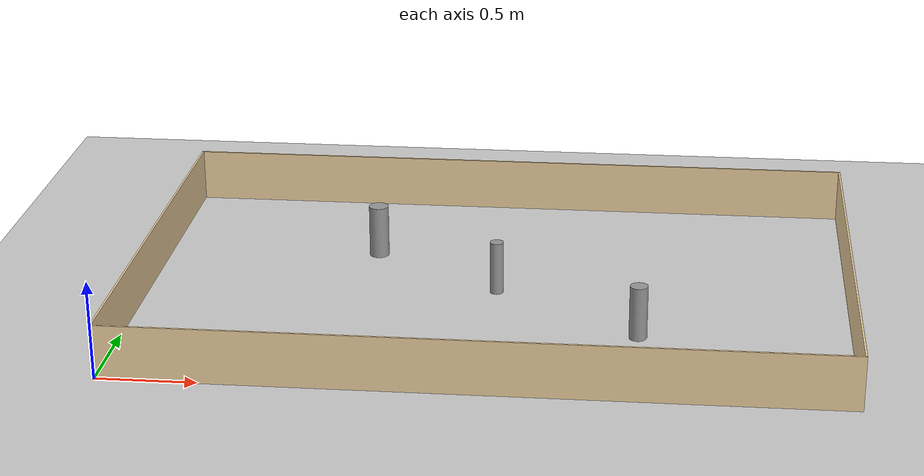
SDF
<?xml version="1.0" ?>
<sdf version="1.4">
  <world name="default">
    <scene>
      <ambient>0.5 0.5 0.5 1.0</ambient>
      <shadows>0</shadows>
    </scene>
    <include>
      <uri>model://ground_plane</uri>
    </include>
    <include>
      <uri>model://sun</uri>
    </include>

    <model name='unit_cylinder1_1'>
      <link name='link'>
        <pose frame=''>1.81 1.21 0.14 0 -0 0</pose>
        <inertial>
          <mass>1</mass>
          <inertia>
            <ixx>0.145833</ixx>
            <ixy>0</ixy>
            <ixz>0</ixz>
            <iyy>0.145833</iyy>
            <iyz>0</iyz>
            <izz>0.125</izz>
          </inertia>
          <pose frame=''>0 0 0 0 -0 0</pose>
        </inertial>
        <self_collide>0</self_collide>
        <kinematic>0</kinematic>
        <gravity>1</gravity>
        <visual name='visual'>
          <geometry>
            <cylinder>
              <radius>0.035</radius>
              <length>0.28</length>
            </cylinder>
          </geometry>
          <material>
            <script>
              <name>Gazebo/Grey</name>
              <uri>file://media/materials/scripts/gazebo.material</uri>
            </script>
            <ambient>0.3 0.3 0.3 1</ambient>
            <diffuse>0.7 0.7 0.7 1</diffuse>
            <specular>0.01 0.01 0.01 1</specular>
            <emissive>0 0 0 1</emissive>
            <shader type='vertex'>
              <normal_map>__default__</normal_map>
            </shader>
          </material>
          <pose frame=''>0 0 0 0 -0 0</pose>
          <transparency>0</transparency>
          <cast_shadows>1</cast_shadows>
        </visual>
        <collision name='collision'>
          <laser_retro>0</laser_retro>
          <max_contacts>10</max_contacts>
          <pose frame=''>0 0 0 0 -0 0</pose>
          <geometry>
            <cylinder>
              <radius>0.035</radius>
              <length>0.28</length>
            </cylinder>
          </geometry>
          <surface>
            <friction>
              <ode>
                <mu>1</mu>
                <mu2>1</mu2>
                <fdir1>0 0 0</fdir1>
                <slip1>0</slip1>
                <slip2>0</slip2>
              </ode>
              <torsional>
                <coefficient>1</coefficient>
                <patch_radius>0</patch_radius>
                <surface_radius>0</surface_radius>
                <use_patch_radius>1</use_patch_radius>
                <ode>
                  <slip>0</slip>
                </ode>
              </torsional>
            </friction>
            <bounce>
              <restitution_coefficient>0</restitution_coefficient>
              <threshold>1e+06</threshold>
            </bounce>
            <contact>
              <collide_without_contact>0</collide_without_contact>
              <collide_without_contact_bitmask>1</collide_without_contact_bitmask>
              <collide_bitmask>1</collide_bitmask>
              <ode>
                <soft_cfm>0</soft_cfm>
                <soft_erp>0.2</soft_erp>
                <kp>1e+13</kp>
                <kd>1</kd>
                <max_vel>0.01</max_vel>
                <min_depth>0</min_depth>
              </ode>
              <bullet>
                <split_impulse>1</split_impulse>
                <split_impulse_penetration_threshold>-0.01</split_impulse_penetration_threshold>
                <soft_cfm>0</soft_cfm>
                <soft_erp>0.2</soft_erp>
                <kp>1e+13</kp>
                <kd>1</kd>
              </bullet>
            </contact>
          </surface>
        </collision>
      </link>
      <static>1</static>
      <allow_auto_disable>1</allow_auto_disable>
      <pose frame=''>0 0 0 0 -0 0</pose>
    </model>

    <model name='unit_cylinder1_2'>
      <link name='link'>
        <pose frame=''>1.13 1.66 0.14 0 -0 0</pose>
        <inertial>
          <mass>1</mass>
          <inertia>
            <ixx>0.145833</ixx>
            <ixy>0</ixy>
            <ixz>0</ixz>
            <iyy>0.145833</iyy>
            <iyz>0</iyz>
            <izz>0.125</izz>
          </inertia>
          <pose frame=''>0 0 0 0 -0 0</pose>
        </inertial>
        <self_collide>0</self_collide>
        <kinematic>0</kinematic>
        <gravity>1</gravity>
        <visual name='visual'>
          <geometry>
            <cylinder>
              <radius>0.052</radius>
              <length>0.28</length>
            </cylinder>
          </geometry>
          <material>
            <script>
              <name>Gazebo/Grey</name>
              <uri>file://media/materials/scripts/gazebo.material</uri>
            </script>
            <ambient>0.3 0.3 0.3 1</ambient>
            <diffuse>0.7 0.7 0.7 1</diffuse>
            <specular>0.01 0.01 0.01 1</specular>
            <emissive>0 0 0 1</emissive>
            <shader type='vertex'>
              <normal_map>__default__</normal_map>
            </shader>
          </material>
          <pose frame=''>0 0 0 0 -0 0</pose>
          <transparency>0</transparency>
          <cast_shadows>1</cast_shadows>
        </visual>
        <collision name='collision'>
          <laser_retro>0</laser_retro>
          <max_contacts>10</max_contacts>
          <pose frame=''>0 0 0 0 -0 0</pose>
          <geometry>
            <cylinder>
              <radius>0.035</radius>
              <length>0.28</length>
            </cylinder>
          </geometry>
          <surface>
            <friction>
              <ode>
                <mu>1</mu>
                <mu2>1</mu2>
                <fdir1>0 0 0</fdir1>
                <slip1>0</slip1>
                <slip2>0</slip2>
              </ode>
              <torsional>
                <coefficient>1</coefficient>
                <patch_radius>0</patch_radius>
                <surface_radius>0</surface_radius>
                <use_patch_radius>1</use_patch_radius>
                <ode>
                  <slip>0</slip>
                </ode>
              </torsional>
            </friction>
            <bounce>
              <restitution_coefficient>0</restitution_coefficient>
              <threshold>1e+06</threshold>
            </bounce>
            <contact>
              <collide_without_contact>0</collide_without_contact>
              <collide_without_contact_bitmask>1</collide_without_contact_bitmask>
              <collide_bitmask>1</collide_bitmask>
              <ode>
                <soft_cfm>0</soft_cfm>
                <soft_erp>0.2</soft_erp>
                <kp>1e+13</kp>
                <kd>1</kd>
                <max_vel>0.01</max_vel>
                <min_depth>0</min_depth>
              </ode>
              <bullet>
                <split_impulse>1</split_impulse>
                <split_impulse_penetration_threshold>-0.01</split_impulse_penetration_threshold>
                <soft_cfm>0</soft_cfm>
                <soft_erp>0.2</soft_erp>
                <kp>1e+13</kp>
                <kd>1</kd>
              </bullet>
            </contact>
          </surface>
        </collision>
      </link>
      <static>1</static>
      <allow_auto_disable>1</allow_auto_disable>
      <pose frame=''>0 0 0 0 -0 0</pose>
    </model>

    <model name='unit_cylinder1_3'>
      <link name='link'>
        <pose frame=''>2.56 0.71 0.14 0 -0 0</pose>
        <inertial>
          <mass>1</mass>
          <inertia>
            <ixx>0.145833</ixx>
            <ixy>0</ixy>
            <ixz>0</ixz>
            <iyy>0.145833</iyy>
            <iyz>0</iyz>
            <izz>0.125</izz>
          </inertia>
          <pose frame=''>0 0 0 0 -0 0</pose>
        </inertial>
        <self_collide>0</self_collide>
        <kinematic>0</kinematic>
        <gravity>1</gravity>
        <visual name='visual'>
          <geometry>
            <cylinder>
              <radius>0.045</radius>
              <length>0.28</length>
            </cylinder>
          </geometry>
          <material>
            <script>
              <name>Gazebo/Grey</name>
              <uri>file://media/materials/scripts/gazebo.material</uri>
            </script>
            <ambient>0.3 0.3 0.3 1</ambient>
            <diffuse>0.7 0.7 0.7 1</diffuse>
            <specular>0.01 0.01 0.01 1</specular>
            <emissive>0 0 0 1</emissive>
            <shader type='vertex'>
              <normal_map>__default__</normal_map>
            </shader>
          </material>
          <pose frame=''>0 0 0 0 -0 0</pose>
          <transparency>0</transparency>
          <cast_shadows>1</cast_shadows>
        </visual>
        <collision name='collision'>
          <laser_retro>0</laser_retro>
          <max_contacts>10</max_contacts>
          <pose frame=''>0 0 0 0 -0 0</pose>
          <geometry>
            <cylinder>
              <radius>0.035</radius>
              <length>0.28</length>
            </cylinder>
          </geometry>
          <surface>
            <friction>
              <ode>
                <mu>1</mu>
                <mu2>1</mu2>
                <fdir1>0 0 0</fdir1>
                <slip1>0</slip1>
                <slip2>0</slip2>
              </ode>
              <torsional>
                <coefficient>1</coefficient>
                <patch_radius>0</patch_radius>
                <surface_radius>0</surface_radius>
                <use_patch_radius>1</use_patch_radius>
                <ode>
                  <slip>0</slip>
                </ode>
              </torsional>
            </friction>
            <bounce>
              <restitution_coefficient>0</restitution_coefficient>
              <threshold>1e+06</threshold>
            </bounce>
            <contact>
              <collide_without_contact>0</collide_without_contact>
              <collide_without_contact_bitmask>1</collide_without_contact_bitmask>
              <collide_bitmask>1</collide_bitmask>
              <ode>
                <soft_cfm>0</soft_cfm>
                <soft_erp>0.2</soft_erp>
                <kp>1e+13</kp>
                <kd>1</kd>
                <max_vel>0.01</max_vel>
                <min_depth>0</min_depth>
              </ode>
              <bullet>
                <split_impulse>1</split_impulse>
                <split_impulse_penetration_threshold>-0.01</split_impulse_penetration_threshold>
                <soft_cfm>0</soft_cfm>
                <soft_erp>0.2</soft_erp>
                <kp>1e+13</kp>
                <kd>1</kd>
              </bullet>
            </contact>
          </surface>
        </collision>
      </link>
      <static>1</static>
      <allow_auto_disable>1</allow_auto_disable>
      <pose frame=''>0 0 0 0 -0 0</pose>
    </model>

    <model name='outer_box'>
    <pose frame=''>1.81 1.21 0 0 -0 0</pose>
    <link name='Wall_0'>
      <collision name='Wall_0_Collision'>
        <geometry>
          <box>
            <size>3.63 0.01 0.28</size>
          </box>
        </geometry>
        <pose frame=''>0 0 0.14 0 -0 0</pose>
      </collision>
      <visual name='Wall_0_Visual'>
        <pose frame=''>0 0 0.14 0 -0 0</pose>
        <geometry>
          <box>
            <size>3.63 0.01 0.28</size>
          </box>
        </geometry>
        <material>
          <script>
            <uri>file://media/materials/scripts/gazebo.material</uri>
            <name>Gazebo/Grey</name>
          </script>
          <ambient>0.921569 0.807843 0.615686 1</ambient>
        </material>
        <meta>
          <layer>0</layer>
        </meta>
      </visual>
      <pose frame=''>0 1.21 0 0 -0 0</pose>
    </link>
    <link name='Wall_2'>
      <collision name='Wall_2_Collision'>
        <geometry>
          <box>
            <size>2.43 0.01 0.28</size>
          </box>
        </geometry>
        <pose frame=''>0 0 0.14 0 -0 0</pose>
      </collision>
      <visual name='Wall_2_Visual'>
        <pose frame=''>0 0 0.14 0 -0 0</pose>
        <geometry>
          <box>
            <size>2.43 0.01 0.28</size>
          </box>
        </geometry>
        <material>
          <script>
            <uri>file://media/materials/scripts/gazebo.material</uri>
            <name>Gazebo/Grey</name>
          </script>
          <ambient>0.921569 0.807843 0.615686 1</ambient>
        </material>
        <meta>
          <layer>0</layer>
        </meta>
      </visual>
      <pose frame=''>1.81 0 0 0 0 -1.5708</pose>
    </link>
    <link name='Wall_4'>
      <collision name='Wall_4_Collision'>
        <geometry>
          <box>
            <size>3.63 0.01 0.28</size>
          </box>
        </geometry>
        <pose frame=''>0 0 0.14 0 -0 0</pose>
      </collision>
      <visual name='Wall_4_Visual'>
        <pose frame=''>0 0 0.14 0 -0 0</pose>
        <geometry>
          <box>
            <size>3.63 0.01 0.28</size>
          </box>
        </geometry>
        <material>
          <script>
            <uri>file://media/materials/scripts/gazebo.material</uri>
            <name>Gazebo/Grey</name>
          </script>
          <ambient>0.921569 0.807843 0.615686 1</ambient>
        </material>
        <meta>
          <layer>0</layer>
        </meta>
      </visual>
      <pose frame=''>0 -1.21 0 0 -0 3.14159</pose>
    </link>
    <link name='Wall_6'>
      <collision name='Wall_6_Collision'>
        <geometry>
          <box>
            <size>2.43 0.01 0.28</size>
          </box>
        </geometry>
        <pose frame=''>0 0 0.14 0 -0 0</pose>
      </collision>
      <visual name='Wall_6_Visual'>
        <pose frame=''>0 0 0.14 0 -0 0</pose>
        <geometry>
          <box>
            <size>2.43 0.01 0.28</size>
          </box>
        </geometry>
        <material>
          <script>
            <uri>file://media/materials/scripts/gazebo.material</uri>
            <name>Gazebo/Grey</name>
          </script>
          <ambient>0.921569 0.807843 0.615686 1</ambient>
        </material>
        <meta>
          <layer>0</layer>
        </meta>
      </visual>
      <pose frame=''>-1.81 0 0 0 -0 1.5708</pose>
    </link>
    <static>1</static>
  </model>

  </world>
</sdf>
